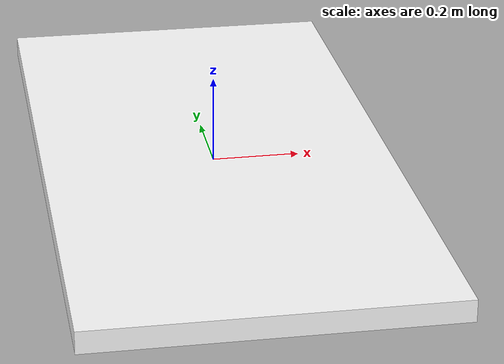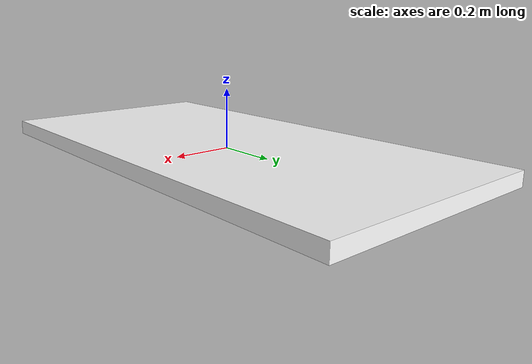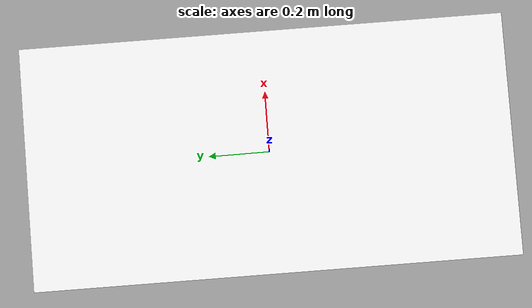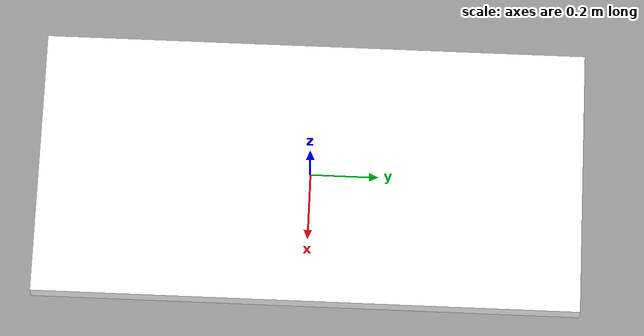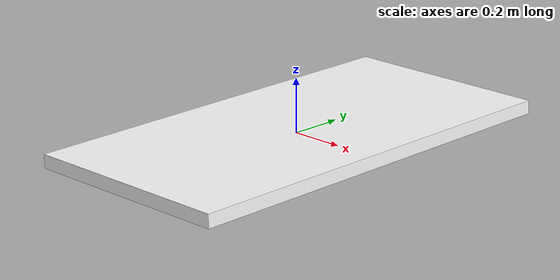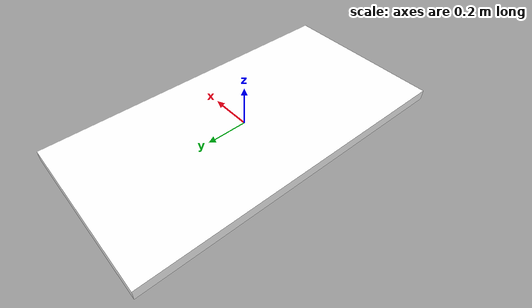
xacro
<?xml version="1.0" ?>

<robot xmlns:xacro="http://ros.org/wiki/xacro" name="table">
	<xacro:property name="height" value="1.0"/>
	<xacro:property name="length" value="1.6"/>
	<xacro:property name="width" value="0.8"/>
	<xacro:property name="thick" value="0.05"/>
	<link name="base_link">
		<contact>
			<lateral_friction value="0.1"/>
		</contact>
		<inertial>
			<origin rpy="0 0 0" xyz="0 0 0"/>
			<mass value="100.0"/>
			<inertia ixx="0.01" ixy="0" ixz="0" iyy="0.01" iyz="0" izz="0.01"/>
		</inertial>
		<visual>
			<origin rpy="0 0 0" xyz="0 0 0"/>
			<geometry>
				<mesh filename="cube.obj" scale="${width} ${length} ${thick}"/>
			</geometry>
			<material name="white">
				<color rgba="1 1 1 1"/>
			</material>
		</visual>
		<collision>
			<origin rpy="0 0 0" xyz="0 0 0"/>
			<geometry>
				<mesh filename="cube.obj" scale="${width} ${length} ${thick}"/>
			</geometry>
			<material name="white">
				<color rgba="1 1 1 1"/>
			</material>
		</collision>
	</link>
</robot>
